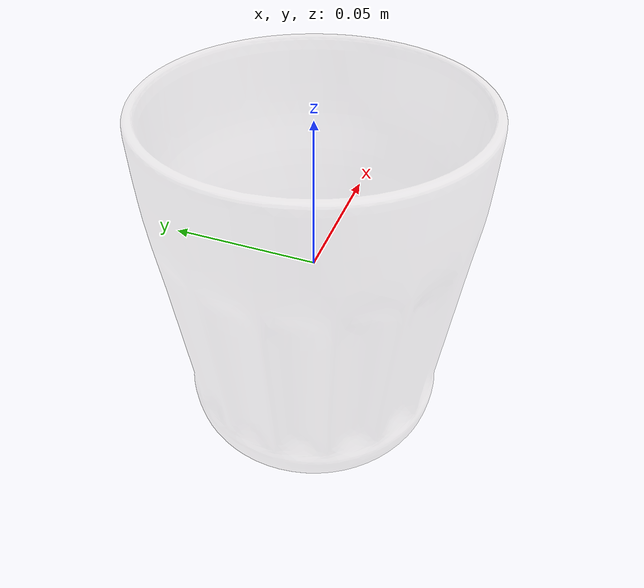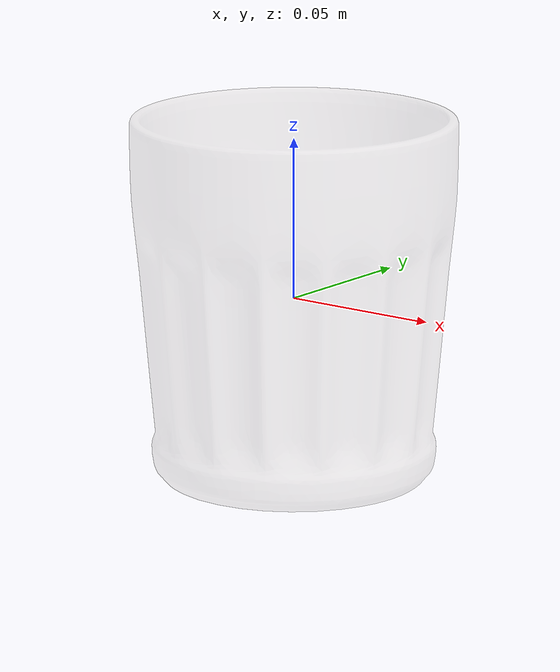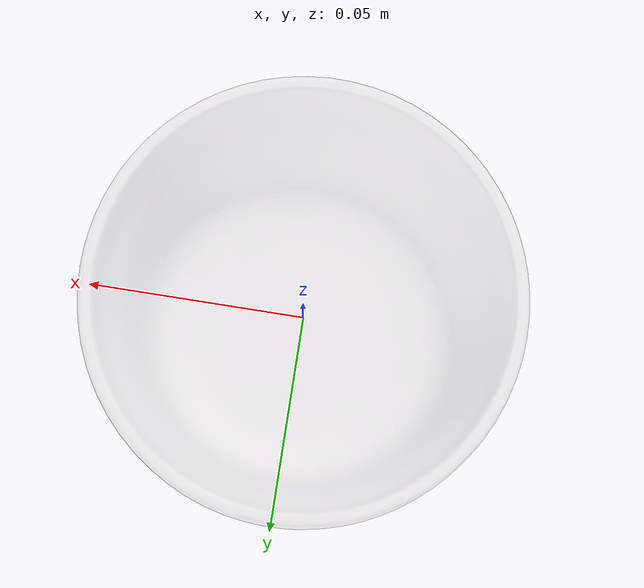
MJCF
<mujoco model="model">
  <option timestep="0.002" gravity="0.0 0.0 -9.81"/>
  <compiler angle="radian"/>
  <asset>
    <mesh file="visual/Clear.obj" name="GlassCup017_Clear_vis"/>
    <texture file="visual/T_BC001.png" name="GlassCup017_Clear_material" type="2d"/>
    <material name="GlassCup017_Clear_material" rgba="1 1 1 0.20000000298023224" texture="GlassCup017_Clear_material" shininess="0.5180797278881073" specular="0.3103448502657381"/>
    <mesh file="collision/collision_mesh_collision_0.obj" name="GlassCup017_collision_mesh_0"/>
    <mesh file="collision/collision_mesh_collision_1.obj" name="GlassCup017_collision_mesh_1"/>
    <mesh file="collision/collision_mesh_collision_2.obj" name="GlassCup017_collision_mesh_2"/>
    <mesh file="collision/collision_mesh_collision_3.obj" name="GlassCup017_collision_mesh_3"/>
    <mesh file="collision/collision_mesh_collision_4.obj" name="GlassCup017_collision_mesh_4"/>
    <mesh file="collision/collision_mesh_collision_5.obj" name="GlassCup017_collision_mesh_5"/>
    <mesh file="collision/collision_mesh_collision_6.obj" name="GlassCup017_collision_mesh_6"/>
    <mesh file="collision/collision_mesh_collision_7.obj" name="GlassCup017_collision_mesh_7"/>
    <mesh file="collision/collision_mesh_collision_8.obj" name="GlassCup017_collision_mesh_8"/>
    <mesh file="collision/collision_mesh_collision_9.obj" name="GlassCup017_collision_mesh_9"/>
    <mesh file="collision/collision_mesh_collision_10.obj" name="GlassCup017_collision_mesh_10"/>
    <mesh file="collision/collision_mesh_collision_11.obj" name="GlassCup017_collision_mesh_11"/>
    <mesh file="collision/collision_mesh_collision_12.obj" name="GlassCup017_collision_mesh_12"/>
    <mesh file="collision/collision_mesh_collision_13.obj" name="GlassCup017_collision_mesh_13"/>
    <mesh file="collision/collision_mesh_collision_14.obj" name="GlassCup017_collision_mesh_14"/>
    <mesh file="collision/collision_mesh_collision_15.obj" name="GlassCup017_collision_mesh_15"/>
  </asset>
  <default>
    <default class="visual">
      <geom conaffinity="0" contype="0" group="1" type="mesh"/>
    </default>
    <default class="collision">
      <geom group="3" rgba="0.5 0 0 0.5" density="1000.0"/>
    </default>
    <default class="spawn">
      <geom group="0" rgba="1 1 1 0.5" contype="0" conaffinity="0"/>
      <site group="0" rgba="1 1 1 0.5"/>
    </default>
    <default class="region">
      <geom group="1" conaffinity="0" contype="0" rgba="0 1 0 0" mass="0"/>
    </default>
  </default>
  <worldbody>
    <body>
      <body name="object">
        <geom mesh="GlassCup017_Clear_vis" type="mesh" solimp="0.998 0.998 0.001" solref="0.001 1" friction="0.95 0.3 0.1" class="visual" material="GlassCup017_Clear_material"/>
        <geom mesh="GlassCup017_collision_mesh_0" type="mesh" class="collision"/>
        <geom mesh="GlassCup017_collision_mesh_1" type="mesh" class="collision"/>
        <geom mesh="GlassCup017_collision_mesh_2" type="mesh" class="collision"/>
        <geom mesh="GlassCup017_collision_mesh_3" type="mesh" class="collision"/>
        <geom mesh="GlassCup017_collision_mesh_4" type="mesh" class="collision"/>
        <geom mesh="GlassCup017_collision_mesh_5" type="mesh" class="collision"/>
        <geom mesh="GlassCup017_collision_mesh_6" type="mesh" class="collision"/>
        <geom mesh="GlassCup017_collision_mesh_7" type="mesh" class="collision"/>
        <geom mesh="GlassCup017_collision_mesh_8" type="mesh" class="collision"/>
        <geom mesh="GlassCup017_collision_mesh_9" type="mesh" class="collision"/>
        <geom mesh="GlassCup017_collision_mesh_10" type="mesh" class="collision"/>
        <geom mesh="GlassCup017_collision_mesh_11" type="mesh" class="collision"/>
        <geom mesh="GlassCup017_collision_mesh_12" type="mesh" class="collision"/>
        <geom mesh="GlassCup017_collision_mesh_13" type="mesh" class="collision"/>
        <geom mesh="GlassCup017_collision_mesh_14" type="mesh" class="collision"/>
        <geom mesh="GlassCup017_collision_mesh_15" type="mesh" class="collision"/>
        <geom class="region" name="reg_bbox" type="box" pos="-9.350000000005187e-07 -8.899999999999186e-07 -1.0400000000007625e-06" size="0.050012065 0.05001211 0.05639846"/>
        <geom class="region" name="liquid" type="cylinder" rgba="0 0 0 0" size="0.037 0.02" pos="0.000002 0.000000 -0.0175"/>
        <geom class="region" name="reg_int" type="cylinder" rgba="0 0 0 0" size="0.03 0.05" pos="0.000002 0.000000 0.0105"/>
      </body>
    </body>
  </worldbody>
  <actuator/>
</mujoco>
